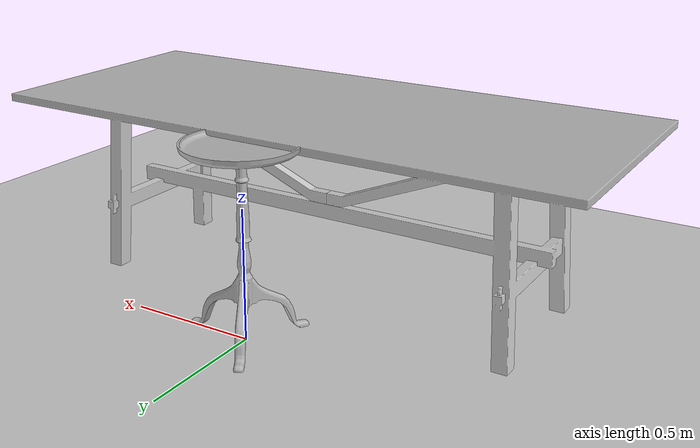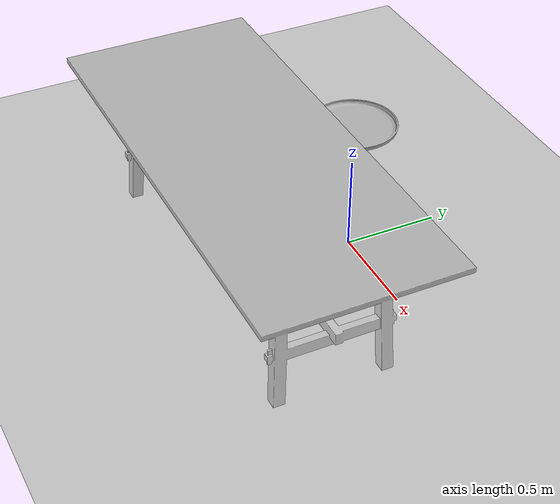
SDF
<?xml version="1.0" ?>

<sdf version="1.6">

  <world name="ur5_world">

    <plugin name="ros_link_attacher_plugin" filename="libgazebo_ros_link_attacher.so"/>
    <gui>
      <camera name="user_camera">
        <pose>1.4 -2.3 1.4 0.0 0.25 1.9</pose>
      </camera>
    </gui>

    <gravity>0 0 -9.81</gravity>

    <physics name="default_physics" default="0" type="ode">
      <ode>
        <constraints>
          <contact_max_correcting_vel>0.1</contact_max_correcting_vel>
          <contact_surface_layer>0.0001</contact_surface_layer>
        </constraints>
      </ode>
      <max_step_size>0.001</max_step_size>
      <real_time_factor>1</real_time_factor>
      <real_time_update_rate>1000</real_time_update_rate>
    </physics>

    <scene>
      <ambient>0.4 0.4 0.4 1</ambient>
      <background>0.7 0.7 0.7 1</background>
      <shadows>false</shadows>
    </scene>

    <!-- Light Source -->
    <include>
      <uri>model://sun</uri>
    </include>

    <!-- A ground plane -->
    <include>
      <uri>model://ground_plane</uri>
      <pose>0 0 0 0 0 0</pose>
    </include>

    <!-- Table -->
    <model name="modern_table">
      <static>true</static>
      <include>
        <uri>model://modern_table</uri>
         <pose>0 -0.558 0 0 0 -3.1415926535</pose>
      </include>
    </model>

      <!-- Robot Base -->
    <model name="robot_base">
      <static>true</static>
      <include>
        <uri>model://robot_base</uri>
         <pose>0 0 -0.010370 0 0 0</pose>
      </include>
    </model>

    <!-- L515 camera used for detection -0.58 -0.528 -0.437720 -0.50-->

  </world>
</sdf>

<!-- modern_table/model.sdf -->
<sdf version="1.7">
  <model name="modern_table">
    <static>true</static>
    <link name="link">
      <pose>0 0 0.74 0 0 0</pose>

      <collision name="surface">
        <pose>0 0 -0.015 0 0 0</pose>
        <geometry>
          <box>
            <size>2.35 1 0.03</size>
          </box>
        </geometry>
      </collision>

      <visual name="visual">
        <geometry>
          <mesh>
            <uri>model://modern_table/meshes/modern_table.dae</uri>
          </mesh>
        </geometry>
        <light type="directional" name="some_light">
          <diffuse>0.7 0.7 0.7 0</diffuse>
          <specular>1 1 1 0</specular>
          <direction>-1 -1 -1</direction>
        </light>
      </visual>
    </link>
  </model>
</sdf>

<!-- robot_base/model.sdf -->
<sdf version="1.7">
  <model name="robot_base">
    <static>true</static>
    <link name="link">
      <pose>0 0 0.73 0 0 0</pose>

      <collision name="surface">
        <pose>0 0 -0.015 0 0 0</pose>
        <geometry>
          <box>
            <size>2.35 1 0.03</size>
          </box>
        </geometry>
      </collision>

      <visual name="visual">
        <geometry>
          <mesh>
            <uri>model://robot_base/meshes/robot_base.dae</uri>
          </mesh>
        </geometry>
      </visual>
    </link>
  </model>
</sdf>
